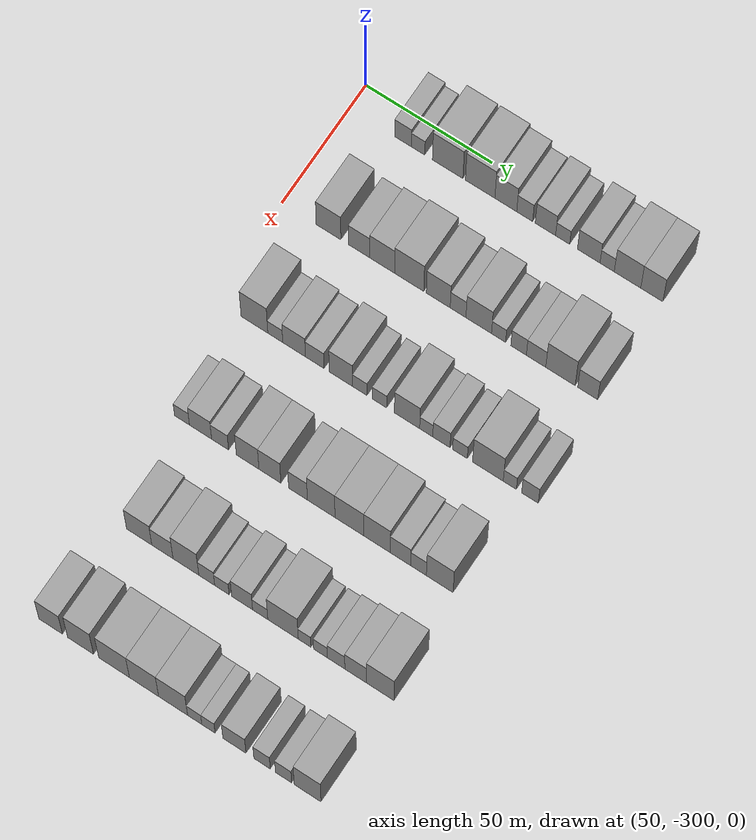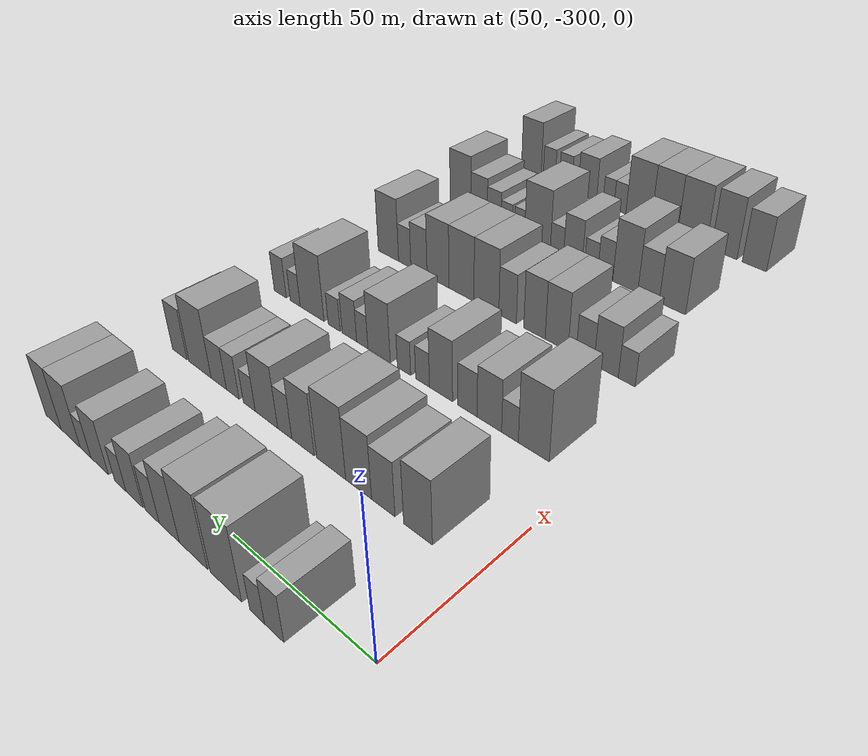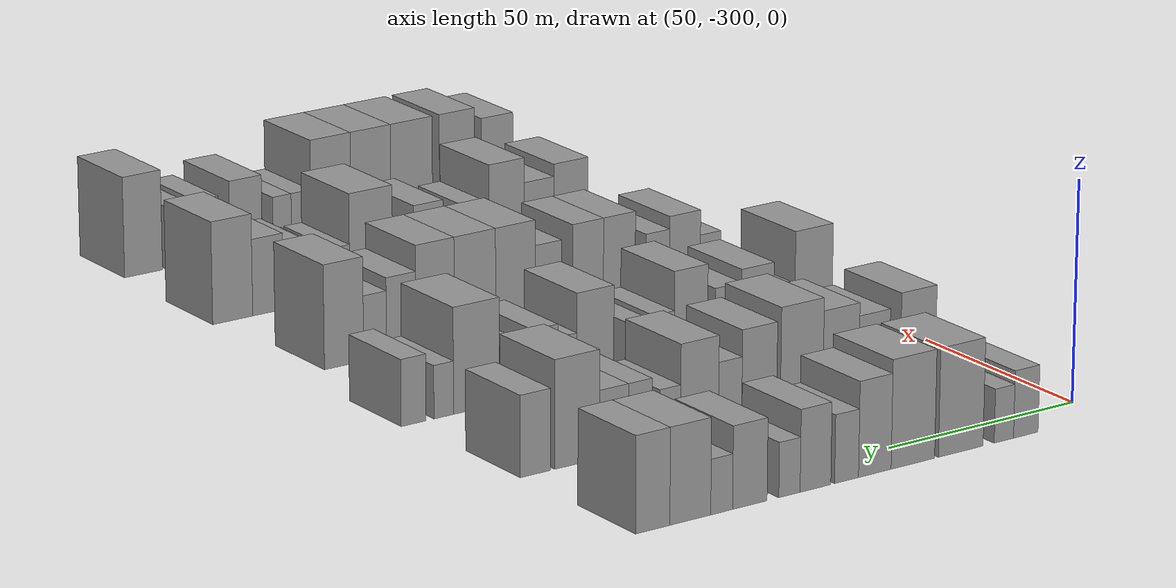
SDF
<sdf version="1.6">
 <world name="default">
  <model name="building_34">
   <static>1</static>
   <pose>50.0000 -278.7101 0 0.000000 0.000000 0.000000</pose>
   <link name="link">
    <pose>0 0 7.50 0 0 0</pose>
    <collision name="collision"><geometry><box><size>20.0000 6.6780 15.0000</size></box></geometry></collision>
    <visual name="visual">
     <cast_shadows>0</cast_shadows>
     <geometry><box><size>20.0000 6.6780 15.0000</size></box></geometry>
     <material>
      <script>
       <uri>model://grey_wall/materials/scripts</uri>
       <uri>model://grey_wall/materials/textures</uri>
       <name>vrc/grey_wall</name>
      </script>
     </material>
    </visual>
   </link>
  </model>
  <model name="building_35">
   <static>1</static>
   <pose>50.0000 -272.7477 0 0.000000 0.000000 0.000000</pose>
   <link name="link">
    <pose>0 0 6.00 0 0 0</pose>
    <collision name="collision"><geometry><box><size>20.0000 5.2467 12.0000</size></box></geometry></collision>
    <visual name="visual">
     <cast_shadows>0</cast_shadows>
     <geometry><box><size>20.0000 5.2467 12.0000</size></box></geometry>
     <material>
      <script>
       <uri>model://grey_wall/materials/scripts</uri>
       <uri>model://grey_wall/materials/textures</uri>
       <name>vrc/grey_wall</name>
      </script>
     </material>
    </visual>
   </link>
  </model>
  <model name="building_36">
   <static>1</static>
   <pose>50.0000 -261.1301 0 0.000000 0.000000 0.000000</pose>
   <link name="link">
    <pose>0 0 12.00 0 0 0</pose>
    <collision name="collision"><geometry><box><size>20.0000 11.9886 24.0000</size></box></geometry></collision>
    <visual name="visual">
     <cast_shadows>0</cast_shadows>
     <geometry><box><size>20.0000 11.9886 24.0000</size></box></geometry>
     <material>
      <script>
       <uri>model://grey_wall/materials/scripts</uri>
       <uri>model://grey_wall/materials/textures</uri>
       <name>vrc/grey_wall</name>
      </script>
     </material>
    </visual>
   </link>
  </model>
  <model name="building_37">
   <static>1</static>
   <pose>50.0000 -248.3697 0 0.000000 0.000000 0.000000</pose>
   <link name="link">
    <pose>0 0 12.00 0 0 0</pose>
    <collision name="collision"><geometry><box><size>20.0000 11.5321 24.0000</size></box></geometry></collision>
    <visual name="visual">
     <cast_shadows>0</cast_shadows>
     <geometry><box><size>20.0000 11.5321 24.0000</size></box></geometry>
     <material>
      <script>
       <uri>model://grey_wall/materials/scripts</uri>
       <uri>model://grey_wall/materials/textures</uri>
       <name>vrc/grey_wall</name>
      </script>
     </material>
    </visual>
   </link>
  </model>
  <model name="building_38">
   <static>1</static>
   <pose>50.0000 -238.3256 0 0.000000 0.000000 0.000000</pose>
   <link name="link">
    <pose>0 0 10.50 0 0 0</pose>
    <collision name="collision"><geometry><box><size>20.0000 8.5561 21.0000</size></box></geometry></collision>
    <visual name="visual">
     <cast_shadows>0</cast_shadows>
     <geometry><box><size>20.0000 8.5561 21.0000</size></box></geometry>
     <material>
      <script>
       <uri>model://grey_wall/materials/scripts</uri>
       <uri>model://grey_wall/materials/textures</uri>
       <name>vrc/grey_wall</name>
      </script>
     </material>
    </visual>
   </link>
  </model>
  <model name="building_39">
   <static>1</static>
   <pose>50.0000 -230.9383 0 0.000000 0.000000 0.000000</pose>
   <link name="link">
    <pose>0 0 7.50 0 0 0</pose>
    <collision name="collision"><geometry><box><size>20.0000 6.2185 15.0000</size></box></geometry></collision>
    <visual name="visual">
     <cast_shadows>0</cast_shadows>
     <geometry><box><size>20.0000 6.2185 15.0000</size></box></geometry>
     <material>
      <script>
       <uri>model://grey_wall/materials/scripts</uri>
       <uri>model://grey_wall/materials/textures</uri>
       <name>vrc/grey_wall</name>
      </script>
     </material>
    </visual>
   </link>
  </model>
  <model name="building_40">
   <static>1</static>
   <pose>50.0000 -222.8630 0 0.000000 0.000000 0.000000</pose>
   <link name="link">
    <pose>0 0 9.00 0 0 0</pose>
    <collision name="collision"><geometry><box><size>20.0000 7.9320 18.0000</size></box></geometry></collision>
    <visual name="visual">
     <cast_shadows>0</cast_shadows>
     <geometry><box><size>20.0000 7.9320 18.0000</size></box></geometry>
     <material>
      <script>
       <uri>model://grey_wall/materials/scripts</uri>
       <uri>model://grey_wall/materials/textures</uri>
       <name>vrc/grey_wall</name>
      </script>
     </material>
    </visual>
   </link>
  </model>
  <model name="building_41">
   <static>1</static>
   <pose>50.0000 -216.1563 0 0.000000 0.000000 0.000000</pose>
   <link name="link">
    <pose>0 0 6.00 0 0 0</pose>
    <collision name="collision"><geometry><box><size>20.0000 5.4815 12.0000</size></box></geometry></collision>
    <visual name="visual">
     <cast_shadows>0</cast_shadows>
     <geometry><box><size>20.0000 5.4815 12.0000</size></box></geometry>
     <material>
      <script>
       <uri>model://grey_wall/materials/scripts</uri>
       <uri>model://grey_wall/materials/textures</uri>
       <name>vrc/grey_wall</name>
      </script>
     </material>
    </visual>
   </link>
  </model>
  <model name="building_42">
   <static>1</static>
   <pose>50.0000 -206.0236 0 0.000000 0.000000 0.000000</pose>
   <link name="link">
    <pose>0 0 9.00 0 0 0</pose>
    <collision name="collision"><geometry><box><size>20.0000 8.7838 18.0000</size></box></geometry></collision>
    <visual name="visual">
     <cast_shadows>0</cast_shadows>
     <geometry><box><size>20.0000 8.7838 18.0000</size></box></geometry>
     <material>
      <script>
       <uri>model://grey_wall/materials/scripts</uri>
       <uri>model://grey_wall/materials/textures</uri>
       <name>vrc/grey_wall</name>
      </script>
     </material>
    </visual>
   </link>
  </model>
  <model name="building_43">
   <static>1</static>
   <pose>50.0000 -198.8813 0 0.000000 0.000000 0.000000</pose>
   <link name="link">
    <pose>0 0 6.00 0 0 0</pose>
    <collision name="collision"><geometry><box><size>20.0000 5.5008 12.0000</size></box></geometry></collision>
    <visual name="visual">
     <cast_shadows>0</cast_shadows>
     <geometry><box><size>20.0000 5.5008 12.0000</size></box></geometry>
     <material>
      <script>
       <uri>model://grey_wall/materials/scripts</uri>
       <uri>model://grey_wall/materials/textures</uri>
       <name>vrc/grey_wall</name>
      </script>
     </material>
    </visual>
   </link>
  </model>
  <model name="building_44">
   <static>1</static>
   <pose>50.0000 -190.9988 0 0.000000 0.000000 0.000000</pose>
   <link name="link">
    <pose>0 0 10.50 0 0 0</pose>
    <collision name="collision"><geometry><box><size>20.0000 10.2642 21.0000</size></box></geometry></collision>
    <visual name="visual">
     <cast_shadows>0</cast_shadows>
     <geometry><box><size>20.0000 10.2642 21.0000</size></box></geometry>
     <material>
      <script>
       <uri>model://grey_wall/materials/scripts</uri>
       <uri>model://grey_wall/materials/textures</uri>
       <name>vrc/grey_wall</name>
      </script>
     </material>
    </visual>
   </link>
  </model>
  <model name="building_45">
   <static>1</static>
   <pose>50.0000 -181.6023 0 0.000000 0.000000 0.000000</pose>
   <link name="link">
    <pose>0 0 10.50 0 0 0</pose>
    <collision name="collision"><geometry><box><size>20.0000 8.5288 21.0000</size></box></geometry></collision>
    <visual name="visual">
     <cast_shadows>0</cast_shadows>
     <geometry><box><size>20.0000 8.5288 21.0000</size></box></geometry>
     <material>
      <script>
       <uri>model://grey_wall/materials/scripts</uri>
       <uri>model://grey_wall/materials/textures</uri>
       <name>vrc/grey_wall</name>
      </script>
     </material>
    </visual>
   </link>
  </model>
  <model name="building_181">
   <static>1</static>
   <pose>90.0000 -281.5855 0 0.000000 0.000000 0.000000</pose>
   <link name="link">
    <pose>0 0 10.50 0 0 0</pose>
    <collision name="collision"><geometry><box><size>20.0000 9.7224 21.0000</size></box></geometry></collision>
    <visual name="visual">
     <cast_shadows>0</cast_shadows>
     <geometry><box><size>20.0000 9.7224 21.0000</size></box></geometry>
     <material>
      <script>
       <uri>model://grey_wall/materials/scripts</uri>
       <uri>model://grey_wall/materials/textures</uri>
       <name>vrc/grey_wall</name>
      </script>
     </material>
    </visual>
   </link>
  </model>
  <model name="building_182">
   <static>1</static>
   <pose>90.0000 -269.5433 0 0.000000 0.000000 0.000000</pose>
   <link name="link">
    <pose>0 0 9.00 0 0 0</pose>
    <collision name="collision"><geometry><box><size>20.0000 8.3619 18.0000</size></box></geometry></collision>
    <visual name="visual">
     <cast_shadows>0</cast_shadows>
     <geometry><box><size>20.0000 8.3619 18.0000</size></box></geometry>
     <material>
      <script>
       <uri>model://grey_wall/materials/scripts</uri>
       <uri>model://grey_wall/materials/textures</uri>
       <name>vrc/grey_wall</name>
      </script>
     </material>
    </visual>
   </link>
  </model>
  <model name="building_183">
   <static>1</static>
   <pose>90.0000 -260.5118 0 0.000000 0.000000 0.000000</pose>
   <link name="link">
    <pose>0 0 10.50 0 0 0</pose>
    <collision name="collision"><geometry><box><size>20.0000 9.7011 21.0000</size></box></geometry></collision>
    <visual name="visual">
     <cast_shadows>0</cast_shadows>
     <geometry><box><size>20.0000 9.7011 21.0000</size></box></geometry>
     <material>
      <script>
       <uri>model://grey_wall/materials/scripts</uri>
       <uri>model://grey_wall/materials/textures</uri>
       <name>vrc/grey_wall</name>
      </script>
     </material>
    </visual>
   </link>
  </model>
  <model name="building_184">
   <static>1</static>
   <pose>90.0000 -249.9628 0 0.000000 0.000000 0.000000</pose>
   <link name="link">
    <pose>0 0 12.00 0 0 0</pose>
    <collision name="collision"><geometry><box><size>20.0000 11.3970 24.0000</size></box></geometry></collision>
    <visual name="visual">
     <cast_shadows>0</cast_shadows>
     <geometry><box><size>20.0000 11.3970 24.0000</size></box></geometry>
     <material>
      <script>
       <uri>model://grey_wall/materials/scripts</uri>
       <uri>model://grey_wall/materials/textures</uri>
       <name>vrc/grey_wall</name>
      </script>
     </material>
    </visual>
   </link>
  </model>
  <model name="building_185">
   <static>1</static>
   <pose>90.0000 -238.6274 0 0.000000 0.000000 0.000000</pose>
   <link name="link">
    <pose>0 0 10.50 0 0 0</pose>
    <collision name="collision"><geometry><box><size>20.0000 9.2737 21.0000</size></box></geometry></collision>
    <visual name="visual">
     <cast_shadows>0</cast_shadows>
     <geometry><box><size>20.0000 9.2737 21.0000</size></box></geometry>
     <material>
      <script>
       <uri>model://grey_wall/materials/scripts</uri>
       <uri>model://grey_wall/materials/textures</uri>
       <name>vrc/grey_wall</name>
      </script>
     </material>
    </visual>
   </link>
  </model>
  <model name="building_186">
   <static>1</static>
   <pose>90.0000 -230.9327 0 0.000000 0.000000 0.000000</pose>
   <link name="link">
    <pose>0 0 7.50 0 0 0</pose>
    <collision name="collision"><geometry><box><size>20.0000 6.1157 15.0000</size></box></geometry></collision>
    <visual name="visual">
     <cast_shadows>0</cast_shadows>
     <geometry><box><size>20.0000 6.1157 15.0000</size></box></geometry>
     <material>
      <script>
       <uri>model://grey_wall/materials/scripts</uri>
       <uri>model://grey_wall/materials/textures</uri>
       <name>vrc/grey_wall</name>
      </script>
     </material>
    </visual>
   </link>
  </model>
  <model name="building_187">
   <static>1</static>
   <pose>90.0000 -222.9014 0 0.000000 0.000000 0.000000</pose>
   <link name="link">
    <pose>0 0 10.50 0 0 0</pose>
    <collision name="collision"><geometry><box><size>20.0000 9.9469 21.0000</size></box></geometry></collision>
    <visual name="visual">
     <cast_shadows>0</cast_shadows>
     <geometry><box><size>20.0000 9.9469 21.0000</size></box></geometry>
     <material>
      <script>
       <uri>model://grey_wall/materials/scripts</uri>
       <uri>model://grey_wall/materials/textures</uri>
       <name>vrc/grey_wall</name>
      </script>
     </material>
    </visual>
   </link>
  </model>
  <model name="building_188">
   <static>1</static>
   <pose>90.0000 -215.1962 0 0.000000 0.000000 0.000000</pose>
   <link name="link">
    <pose>0 0 6.00 0 0 0</pose>
    <collision name="collision"><geometry><box><size>20.0000 5.4635 12.0000</size></box></geometry></collision>
    <visual name="visual">
     <cast_shadows>0</cast_shadows>
     <geometry><box><size>20.0000 5.4635 12.0000</size></box></geometry>
     <material>
      <script>
       <uri>model://grey_wall/materials/scripts</uri>
       <uri>model://grey_wall/materials/textures</uri>
       <name>vrc/grey_wall</name>
      </script>
     </material>
    </visual>
   </link>
  </model>
  <model name="building_189">
   <static>1</static>
   <pose>90.0000 -207.4547 0 0.000000 0.000000 0.000000</pose>
   <link name="link">
    <pose>0 0 7.50 0 0 0</pose>
    <collision name="collision"><geometry><box><size>20.0000 6.0195 15.0000</size></box></geometry></collision>
    <visual name="visual">
     <cast_shadows>0</cast_shadows>
     <geometry><box><size>20.0000 6.0195 15.0000</size></box></geometry>
     <material>
      <script>
       <uri>model://grey_wall/materials/scripts</uri>
       <uri>model://grey_wall/materials/textures</uri>
       <name>vrc/grey_wall</name>
      </script>
     </material>
    </visual>
   </link>
  </model>
  <model name="building_190">
   <static>1</static>
   <pose>90.0000 -200.7023 0 0.000000 0.000000 0.000000</pose>
   <link name="link">
    <pose>0 0 7.50 0 0 0</pose>
    <collision name="collision"><geometry><box><size>20.0000 7.4853 15.0000</size></box></geometry></collision>
    <visual name="visual">
     <cast_shadows>0</cast_shadows>
     <geometry><box><size>20.0000 7.4853 15.0000</size></box></geometry>
     <material>
      <script>
       <uri>model://grey_wall/materials/scripts</uri>
       <uri>model://grey_wall/materials/textures</uri>
       <name>vrc/grey_wall</name>
      </script>
     </material>
    </visual>
   </link>
  </model>
  <model name="building_191">
   <static>1</static>
   <pose>90.0000 -191.3024 0 0.000000 0.000000 0.000000</pose>
   <link name="link">
    <pose>0 0 12.00 0 0 0</pose>
    <collision name="collision"><geometry><box><size>20.0000 11.3145 24.0000</size></box></geometry></collision>
    <visual name="visual">
     <cast_shadows>0</cast_shadows>
     <geometry><box><size>20.0000 11.3145 24.0000</size></box></geometry>
     <material>
      <script>
       <uri>model://grey_wall/materials/scripts</uri>
       <uri>model://grey_wall/materials/textures</uri>
       <name>vrc/grey_wall</name>
      </script>
     </material>
    </visual>
   </link>
  </model>
  <model name="building_192">
   <static>1</static>
   <pose>90.0000 -180.8074 0 0.000000 0.000000 0.000000</pose>
   <link name="link">
    <pose>0 0 9.00 0 0 0</pose>
    <collision name="collision"><geometry><box><size>20.0000 7.6755 18.0000</size></box></geometry></collision>
    <visual name="visual">
     <cast_shadows>0</cast_shadows>
     <geometry><box><size>20.0000 7.6755 18.0000</size></box></geometry>
     <material>
      <script>
       <uri>model://grey_wall/materials/scripts</uri>
       <uri>model://grey_wall/materials/textures</uri>
       <name>vrc/grey_wall</name>
      </script>
     </material>
    </visual>
   </link>
  </model>
  <model name="building_309">
   <static>1</static>
   <pose>130.0000 -283.8906 0 0.000000 0.000000 0.000000</pose>
   <link name="link">
    <pose>0 0 12.00 0 0 0</pose>
    <collision name="collision"><geometry><box><size>20.0000 10.4804 24.0000</size></box></geometry></collision>
    <visual name="visual">
     <cast_shadows>0</cast_shadows>
     <geometry><box><size>20.0000 10.4804 24.0000</size></box></geometry>
     <material>
      <script>
       <uri>model://grey_wall/materials/scripts</uri>
       <uri>model://grey_wall/materials/textures</uri>
       <name>vrc/grey_wall</name>
      </script>
     </material>
    </visual>
   </link>
  </model>
  <model name="building_310">
   <static>1</static>
   <pose>130.0000 -275.7303 0 0.000000 0.000000 0.000000</pose>
   <link name="link">
    <pose>0 0 6.00 0 0 0</pose>
    <collision name="collision"><geometry><box><size>20.0000 5.8401 12.0000</size></box></geometry></collision>
    <visual name="visual">
     <cast_shadows>0</cast_shadows>
     <geometry><box><size>20.0000 5.8401 12.0000</size></box></geometry>
     <material>
      <script>
       <uri>model://grey_wall/materials/scripts</uri>
       <uri>model://grey_wall/materials/textures</uri>
       <name>vrc/grey_wall</name>
      </script>
     </material>
    </visual>
   </link>
  </model>
  <model name="building_311">
   <static>1</static>
   <pose>130.0000 -268.3710 0 0.000000 0.000000 0.000000</pose>
   <link name="link">
    <pose>0 0 9.00 0 0 0</pose>
    <collision name="collision"><geometry><box><size>20.0000 8.8785 18.0000</size></box></geometry></collision>
    <visual name="visual">
     <cast_shadows>0</cast_shadows>
     <geometry><box><size>20.0000 8.8785 18.0000</size></box></geometry>
     <material>
      <script>
       <uri>model://grey_wall/materials/scripts</uri>
       <uri>model://grey_wall/materials/textures</uri>
       <name>vrc/grey_wall</name>
      </script>
     </material>
    </visual>
   </link>
  </model>
  <model name="building_312">
   <static>1</static>
   <pose>130.0000 -260.2960 0 0.000000 0.000000 0.000000</pose>
   <link name="link">
    <pose>0 0 7.50 0 0 0</pose>
    <collision name="collision"><geometry><box><size>20.0000 7.2715 15.0000</size></box></geometry></collision>
    <visual name="visual">
     <cast_shadows>0</cast_shadows>
     <geometry><box><size>20.0000 7.2715 15.0000</size></box></geometry>
     <material>
      <script>
       <uri>model://grey_wall/materials/scripts</uri>
       <uri>model://grey_wall/materials/textures</uri>
       <name>vrc/grey_wall</name>
      </script>
     </material>
    </visual>
   </link>
  </model>
  <model name="building_313">
   <static>1</static>
   <pose>130.0000 -250.1205 0 0.000000 0.000000 0.000000</pose>
   <link name="link">
    <pose>0 0 10.50 0 0 0</pose>
    <collision name="collision"><geometry><box><size>20.0000 9.0794 21.0000</size></box></geometry></collision>
    <visual name="visual">
     <cast_shadows>0</cast_shadows>
     <geometry><box><size>20.0000 9.0794 21.0000</size></box></geometry>
     <material>
      <script>
       <uri>model://grey_wall/materials/scripts</uri>
       <uri>model://grey_wall/materials/textures</uri>
       <name>vrc/grey_wall</name>
      </script>
     </material>
    </visual>
   </link>
  </model>
  <model name="building_314">
   <static>1</static>
   <pose>130.0000 -242.7657 0 0.000000 0.000000 0.000000</pose>
   <link name="link">
    <pose>0 0 6.00 0 0 0</pose>
    <collision name="collision"><geometry><box><size>20.0000 5.6302 12.0000</size></box></geometry></collision>
    <visual name="visual">
     <cast_shadows>0</cast_shadows>
     <geometry><box><size>20.0000 5.6302 12.0000</size></box></geometry>
     <material>
      <script>
       <uri>model://grey_wall/materials/scripts</uri>
       <uri>model://grey_wall/materials/textures</uri>
       <name>vrc/grey_wall</name>
      </script>
     </material>
    </visual>
   </link>
  </model>
  <model name="building_315">
   <static>1</static>
   <pose>130.0000 -235.1568 0 0.000000 0.000000 0.000000</pose>
   <link name="link">
    <pose>0 0 6.00 0 0 0</pose>
    <collision name="collision"><geometry><box><size>20.0000 5.5876 12.0000</size></box></geometry></collision>
    <visual name="visual">
     <cast_shadows>0</cast_shadows>
     <geometry><box><size>20.0000 5.5876 12.0000</size></box></geometry>
     <material>
      <script>
       <uri>model://grey_wall/materials/scripts</uri>
       <uri>model://grey_wall/materials/textures</uri>
       <name>vrc/grey_wall</name>
      </script>
     </material>
    </visual>
   </link>
  </model>
  <model name="building_316">
   <static>1</static>
   <pose>130.0000 -224.4772 0 0.000000 0.000000 0.000000</pose>
   <link name="link">
    <pose>0 0 10.50 0 0 0</pose>
    <collision name="collision"><geometry><box><size>20.0000 9.7715 21.0000</size></box></geometry></collision>
    <visual name="visual">
     <cast_shadows>0</cast_shadows>
     <geometry><box><size>20.0000 9.7715 21.0000</size></box></geometry>
     <material>
      <script>
       <uri>model://grey_wall/materials/scripts</uri>
       <uri>model://grey_wall/materials/textures</uri>
       <name>vrc/grey_wall</name>
      </script>
     </material>
    </visual>
   </link>
  </model>
  <model name="building_317">
   <static>1</static>
   <pose>130.0000 -217.0704 0 0.000000 0.000000 0.000000</pose>
   <link name="link">
    <pose>0 0 6.00 0 0 0</pose>
    <collision name="collision"><geometry><box><size>20.0000 5.0422 12.0000</size></box></geometry></collision>
    <visual name="visual">
     <cast_shadows>0</cast_shadows>
     <geometry><box><size>20.0000 5.0422 12.0000</size></box></geometry>
     <material>
      <script>
       <uri>model://grey_wall/materials/scripts</uri>
       <uri>model://grey_wall/materials/textures</uri>
       <name>vrc/grey_wall</name>
      </script>
     </material>
    </visual>
   </link>
  </model>
  <model name="building_318">
   <static>1</static>
   <pose>130.0000 -211.2280 0 0.000000 0.000000 0.000000</pose>
   <link name="link">
    <pose>0 0 7.50 0 0 0</pose>
    <collision name="collision"><geometry><box><size>20.0000 6.6426 15.0000</size></box></geometry></collision>
    <visual name="visual">
     <cast_shadows>0</cast_shadows>
     <geometry><box><size>20.0000 6.6426 15.0000</size></box></geometry>
     <material>
      <script>
       <uri>model://grey_wall/materials/scripts</uri>
       <uri>model://grey_wall/materials/textures</uri>
       <name>vrc/grey_wall</name>
      </script>
     </material>
    </visual>
   </link>
  </model>
  <model name="building_319">
   <static>1</static>
   <pose>130.0000 -204.0711 0 0.000000 0.000000 0.000000</pose>
   <link name="link">
    <pose>0 0 6.00 0 0 0</pose>
    <collision name="collision"><geometry><box><size>20.0000 5.6711 12.0000</size></box></geometry></collision>
    <visual name="visual">
     <cast_shadows>0</cast_shadows>
     <geometry><box><size>20.0000 5.6711 12.0000</size></box></geometry>
     <material>
      <script>
       <uri>model://grey_wall/materials/scripts</uri>
       <uri>model://grey_wall/materials/textures</uri>
       <name>vrc/grey_wall</name>
      </script>
     </material>
    </visual>
   </link>
  </model>
  <model name="building_320">
   <static>1</static>
   <pose>130.0000 -193.3416 0 0.000000 0.000000 0.000000</pose>
   <link name="link">
    <pose>0 0 12.00 0 0 0</pose>
    <collision name="collision"><geometry><box><size>20.0000 11.7881 24.0000</size></box></geometry></collision>
    <visual name="visual">
     <cast_shadows>0</cast_shadows>
     <geometry><box><size>20.0000 11.7881 24.0000</size></box></geometry>
     <material>
      <script>
       <uri>model://grey_wall/materials/scripts</uri>
       <uri>model://grey_wall/materials/textures</uri>
       <name>vrc/grey_wall</name>
      </script>
     </material>
    </visual>
   </link>
  </model>
  <model name="building_321">
   <static>1</static>
   <pose>130.0000 -184.9267 0 0.000000 0.000000 0.000000</pose>
   <link name="link">
    <pose>0 0 6.00 0 0 0</pose>
    <collision name="collision"><geometry><box><size>20.0000 5.0417 12.0000</size></box></geometry></collision>
    <visual name="visual">
     <cast_shadows>0</cast_shadows>
     <geometry><box><size>20.0000 5.0417 12.0000</size></box></geometry>
     <material>
      <script>
       <uri>model://grey_wall/materials/scripts</uri>
       <uri>model://grey_wall/materials/textures</uri>
       <name>vrc/grey_wall</name>
      </script>
     </material>
    </visual>
   </link>
  </model>
  <model name="building_322">
   <static>1</static>
   <pose>130.0000 -177.2299 0 0.000000 0.000000 0.000000</pose>
   <link name="link">
    <pose>0 0 7.50 0 0 0</pose>
    <collision name="collision"><geometry><box><size>20.0000 6.3518 15.0000</size></box></geometry></collision>
    <visual name="visual">
     <cast_shadows>0</cast_shadows>
     <geometry><box><size>20.0000 6.3518 15.0000</size></box></geometry>
     <material>
      <script>
       <uri>model://grey_wall/materials/scripts</uri>
       <uri>model://grey_wall/materials/textures</uri>
       <name>vrc/grey_wall</name>
      </script>
     </material>
    </visual>
   </link>
  </model>
  <model name="building_450">
   <static>1</static>
   <pose>170.0000 -285.1520 0 0.000000 0.000000 0.000000</pose>
   <link name="link">
    <pose>0 0 6.00 0 0 0</pose>
    <collision name="collision"><geometry><box><size>20.0000 5.8097 12.0000</size></box></geometry></collision>
    <visual name="visual">
     <cast_shadows>0</cast_shadows>
     <geometry><box><size>20.0000 5.8097 12.0000</size></box></geometry>
     <material>
      <script>
       <uri>model://grey_wall/materials/scripts</uri>
       <uri>model://grey_wall/materials/textures</uri>
       <name>vrc/grey_wall</name>
      </script>
     </material>
    </visual>
   </link>
  </model>
  <model name="building_451">
   <static>1</static>
   <pose>170.0000 -277.9276 0 0.000000 0.000000 0.000000</pose>
   <link name="link">
    <pose>0 0 9.00 0 0 0</pose>
    <collision name="collision"><geometry><box><size>20.0000 8.6393 18.0000</size></box></geometry></collision>
    <visual name="visual">
     <cast_shadows>0</cast_shadows>
     <geometry><box><size>20.0000 8.6393 18.0000</size></box></geometry>
     <material>
      <script>
       <uri>model://grey_wall/materials/scripts</uri>
       <uri>model://grey_wall/materials/textures</uri>
       <name>vrc/grey_wall</name>
      </script>
     </material>
    </visual>
   </link>
  </model>
  <model name="building_452">
   <static>1</static>
   <pose>170.0000 -270.3039 0 0.000000 0.000000 0.000000</pose>
   <link name="link">
    <pose>0 0 7.50 0 0 0</pose>
    <collision name="collision"><geometry><box><size>20.0000 6.6082 15.0000</size></box></geometry></collision>
    <visual name="visual">
     <cast_shadows>0</cast_shadows>
     <geometry><box><size>20.0000 6.6082 15.0000</size></box></geometry>
     <material>
      <script>
       <uri>model://grey_wall/materials/scripts</uri>
       <uri>model://grey_wall/materials/textures</uri>
       <name>vrc/grey_wall</name>
      </script>
     </material>
    </visual>
   </link>
  </model>
  <model name="building_453">
   <static>1</static>
   <pose>170.0000 -259.5985 0 0.000000 0.000000 0.000000</pose>
   <link name="link">
    <pose>0 0 10.50 0 0 0</pose>
    <collision name="collision"><geometry><box><size>20.0000 8.8025 21.0000</size></box></geometry></collision>
    <visual name="visual">
     <cast_shadows>0</cast_shadows>
     <geometry><box><size>20.0000 8.8025 21.0000</size></box></geometry>
     <material>
      <script>
       <uri>model://grey_wall/materials/scripts</uri>
       <uri>model://grey_wall/materials/textures</uri>
       <name>vrc/grey_wall</name>
      </script>
     </material>
    </visual>
   </link>
  </model>
  <model name="building_454">
   <static>1</static>
   <pose>170.0000 -250.9530 0 0.000000 0.000000 0.000000</pose>
   <link name="link">
    <pose>0 0 10.50 0 0 0</pose>
    <collision name="collision"><geometry><box><size>20.0000 8.4886 21.0000</size></box></geometry></collision>
    <visual name="visual">
     <cast_shadows>0</cast_shadows>
     <geometry><box><size>20.0000 8.4886 21.0000</size></box></geometry>
     <material>
      <script>
       <uri>model://grey_wall/materials/scripts</uri>
       <uri>model://grey_wall/materials/textures</uri>
       <name>vrc/grey_wall</name>
      </script>
     </material>
    </visual>
   </link>
  </model>
  <model name="building_455">
   <static>1</static>
   <pose>170.0000 -240.0830 0 0.000000 0.000000 0.000000</pose>
   <link name="link">
    <pose>0 0 9.00 0 0 0</pose>
    <collision name="collision"><geometry><box><size>20.0000 7.2514 18.0000</size></box></geometry></collision>
    <visual name="visual">
     <cast_shadows>0</cast_shadows>
     <geometry><box><size>20.0000 7.2514 18.0000</size></box></geometry>
     <material>
      <script>
       <uri>model://grey_wall/materials/scripts</uri>
       <uri>model://grey_wall/materials/textures</uri>
       <name>vrc/grey_wall</name>
      </script>
     </material>
    </visual>
   </link>
  </model>
  <model name="building_456">
   <static>1</static>
   <pose>170.0000 -231.1326 0 0.000000 0.000000 0.000000</pose>
   <link name="link">
    <pose>0 0 12.00 0 0 0</pose>
    <collision name="collision"><geometry><box><size>20.0000 10.6492 24.0000</size></box></geometry></collision>
    <visual name="visual">
     <cast_shadows>0</cast_shadows>
     <geometry><box><size>20.0000 10.6492 24.0000</size></box></geometry>
     <material>
      <script>
       <uri>model://grey_wall/materials/scripts</uri>
       <uri>model://grey_wall/materials/textures</uri>
       <name>vrc/grey_wall</name>
      </script>
     </material>
    </visual>
   </link>
  </model>
  <model name="building_457">
   <static>1</static>
   <pose>170.0000 -220.2752 0 0.000000 0.000000 0.000000</pose>
   <link name="link">
    <pose>0 0 12.00 0 0 0</pose>
    <collision name="collision"><geometry><box><size>20.0000 11.0657 24.0000</size></box></geometry></collision>
    <visual name="visual">
     <cast_shadows>0</cast_shadows>
     <geometry><box><size>20.0000 11.0657 24.0000</size></box></geometry>
     <material>
      <script>
       <uri>model://grey_wall/materials/scripts</uri>
       <uri>model://grey_wall/materials/textures</uri>
       <name>vrc/grey_wall</name>
      </script>
     </material>
    </visual>
   </link>
  </model>
  <model name="building_458">
   <static>1</static>
   <pose>170.0000 -209.6518 0 0.000000 0.000000 0.000000</pose>
   <link name="link">
    <pose>0 0 12.00 0 0 0</pose>
    <collision name="collision"><geometry><box><size>20.0000 10.1810 24.0000</size></box></geometry></collision>
    <visual name="visual">
     <cast_shadows>0</cast_shadows>
     <geometry><box><size>20.0000 10.1810 24.0000</size></box></geometry>
     <material>
      <script>
       <uri>model://grey_wall/materials/scripts</uri>
       <uri>model://grey_wall/materials/textures</uri>
       <name>vrc/grey_wall</name>
      </script>
     </material>
    </visual>
   </link>
  </model>
  <model name="building_459">
   <static>1</static>
   <pose>170.0000 -200.6749 0 0.000000 0.000000 0.000000</pose>
   <link name="link">
    <pose>0 0 9.00 0 0 0</pose>
    <collision name="collision"><geometry><box><size>20.0000 7.7728 18.0000</size></box></geometry></collision>
    <visual name="visual">
     <cast_shadows>0</cast_shadows>
     <geometry><box><size>20.0000 7.7728 18.0000</size></box></geometry>
     <material>
      <script>
       <uri>model://grey_wall/materials/scripts</uri>
       <uri>model://grey_wall/materials/textures</uri>
       <name>vrc/grey_wall</name>
      </script>
     </material>
    </visual>
   </link>
  </model>
  <model name="building_460">
   <static>1</static>
   <pose>170.0000 -193.7880 0 0.000000 0.000000 0.000000</pose>
   <link name="link">
    <pose>0 0 7.50 0 0 0</pose>
    <collision name="collision"><geometry><box><size>20.0000 6.0010 15.0000</size></box></geometry></collision>
    <visual name="visual">
     <cast_shadows>0</cast_shadows>
     <geometry><box><size>20.0000 6.0010 15.0000</size></box></geometry>
     <material>
      <script>
       <uri>model://grey_wall/materials/scripts</uri>
       <uri>model://grey_wall/materials/textures</uri>
       <name>vrc/grey_wall</name>
      </script>
     </material>
    </visual>
   </link>
  </model>
  <model name="building_461">
   <static>1</static>
   <pose>170.0000 -185.6848 0 0.000000 0.000000 0.000000</pose>
   <link name="link">
    <pose>0 0 12.00 0 0 0</pose>
    <collision name="collision"><geometry><box><size>20.0000 10.2054 24.0000</size></box></geometry></collision>
    <visual name="visual">
     <cast_shadows>0</cast_shadows>
     <geometry><box><size>20.0000 10.2054 24.0000</size></box></geometry>
     <material>
      <script>
       <uri>model://grey_wall/materials/scripts</uri>
       <uri>model://grey_wall/materials/textures</uri>
       <name>vrc/grey_wall</name>
      </script>
     </material>
    </visual>
   </link>
  </model>
  <model name="building_580">
   <static>1</static>
   <pose>210.0000 -274.5081 0 0.000000 0.000000 0.000000</pose>
   <link name="link">
    <pose>0 0 10.50 0 0 0</pose>
    <collision name="collision"><geometry><box><size>20.0000 9.8038 21.0000</size></box></geometry></collision>
    <visual name="visual">
     <cast_shadows>0</cast_shadows>
     <geometry><box><size>20.0000 9.8038 21.0000</size></box></geometry>
     <material>
      <script>
       <uri>model://grey_wall/materials/scripts</uri>
       <uri>model://grey_wall/materials/textures</uri>
       <name>vrc/grey_wall</name>
      </script>
     </material>
    </visual>
   </link>
  </model>
  <model name="building_581">
   <static>1</static>
   <pose>210.0000 -265.4993 0 0.000000 0.000000 0.000000</pose>
   <link name="link">
    <pose>0 0 9.00 0 0 0</pose>
    <collision name="collision"><geometry><box><size>20.0000 8.2138 18.0000</size></box></geometry></collision>
    <visual name="visual">
     <cast_shadows>0</cast_shadows>
     <geometry><box><size>20.0000 8.2138 18.0000</size></box></geometry>
     <material>
      <script>
       <uri>model://grey_wall/materials/scripts</uri>
       <uri>model://grey_wall/materials/textures</uri>
       <name>vrc/grey_wall</name>
      </script>
     </material>
    </visual>
   </link>
  </model>
  <model name="building_582">
   <static>1</static>
   <pose>210.0000 -256.4042 0 0.000000 0.000000 0.000000</pose>
   <link name="link">
    <pose>0 0 12.00 0 0 0</pose>
    <collision name="collision"><geometry><box><size>20.0000 9.9763 24.0000</size></box></geometry></collision>
    <visual name="visual">
     <cast_shadows>0</cast_shadows>
     <geometry><box><size>20.0000 9.9763 24.0000</size></box></geometry>
     <material>
      <script>
       <uri>model://grey_wall/materials/scripts</uri>
       <uri>model://grey_wall/materials/textures</uri>
       <name>vrc/grey_wall</name>
      </script>
     </material>
    </visual>
   </link>
  </model>
  <model name="building_583">
   <static>1</static>
   <pose>210.0000 -248.3607 0 0.000000 0.000000 0.000000</pose>
   <link name="link">
    <pose>0 0 7.50 0 0 0</pose>
    <collision name="collision"><geometry><box><size>20.0000 6.1108 15.0000</size></box></geometry></collision>
    <visual name="visual">
     <cast_shadows>0</cast_shadows>
     <geometry><box><size>20.0000 6.1108 15.0000</size></box></geometry>
     <material>
      <script>
       <uri>model://grey_wall/materials/scripts</uri>
       <uri>model://grey_wall/materials/textures</uri>
       <name>vrc/grey_wall</name>
      </script>
     </material>
    </visual>
   </link>
  </model>
  <model name="building_584">
   <static>1</static>
   <pose>210.0000 -242.5183 0 0.000000 0.000000 0.000000</pose>
   <link name="link">
    <pose>0 0 6.00 0 0 0</pose>
    <collision name="collision"><geometry><box><size>20.0000 5.5739 12.0000</size></box></geometry></collision>
    <visual name="visual">
     <cast_shadows>0</cast_shadows>
     <geometry><box><size>20.0000 5.5739 12.0000</size></box></geometry>
     <material>
      <script>
       <uri>model://grey_wall/materials/scripts</uri>
       <uri>model://grey_wall/materials/textures</uri>
       <name>vrc/grey_wall</name>
      </script>
     </material>
    </visual>
   </link>
  </model>
  <model name="building_585">
   <static>1</static>
   <pose>210.0000 -234.7299 0 0.000000 0.000000 0.000000</pose>
   <link name="link">
    <pose>0 0 9.00 0 0 0</pose>
    <collision name="collision"><geometry><box><size>20.0000 8.0029 18.0000</size></box></geometry></collision>
    <visual name="visual">
     <cast_shadows>0</cast_shadows>
     <geometry><box><size>20.0000 8.0029 18.0000</size></box></geometry>
     <material>
      <script>
       <uri>model://grey_wall/materials/scripts</uri>
       <uri>model://grey_wall/materials/textures</uri>
       <name>vrc/grey_wall</name>
      </script>
     </material>
    </visual>
   </link>
  </model>
  <model name="building_586">
   <static>1</static>
   <pose>210.0000 -227.8085 0 0.000000 0.000000 0.000000</pose>
   <link name="link">
    <pose>0 0 6.00 0 0 0</pose>
    <collision name="collision"><geometry><box><size>20.0000 5.8399 12.0000</size></box></geometry></collision>
    <visual name="visual">
     <cast_shadows>0</cast_shadows>
     <geometry><box><size>20.0000 5.8399 12.0000</size></box></geometry>
     <material>
      <script>
       <uri>model://grey_wall/materials/scripts</uri>
       <uri>model://grey_wall/materials/textures</uri>
       <name>vrc/grey_wall</name>
      </script>
     </material>
    </visual>
   </link>
  </model>
  <model name="building_587">
   <static>1</static>
   <pose>210.0000 -219.0505 0 0.000000 0.000000 0.000000</pose>
   <link name="link">
    <pose>0 0 12.00 0 0 0</pose>
    <collision name="collision"><geometry><box><size>20.0000 11.6761 24.0000</size></box></geometry></collision>
    <visual name="visual">
     <cast_shadows>0</cast_shadows>
     <geometry><box><size>20.0000 11.6761 24.0000</size></box></geometry>
     <material>
      <script>
       <uri>model://grey_wall/materials/scripts</uri>
       <uri>model://grey_wall/materials/textures</uri>
       <name>vrc/grey_wall</name>
      </script>
     </material>
    </visual>
   </link>
  </model>
  <model name="building_588">
   <static>1</static>
   <pose>210.0000 -210.7938 0 0.000000 0.000000 0.000000</pose>
   <link name="link">
    <pose>0 0 6.00 0 0 0</pose>
    <collision name="collision"><geometry><box><size>20.0000 4.8373 12.0000</size></box></geometry></collision>
    <visual name="visual">
     <cast_shadows>0</cast_shadows>
     <geometry><box><size>20.0000 4.8373 12.0000</size></box></geometry>
     <material>
      <script>
       <uri>model://grey_wall/materials/scripts</uri>
       <uri>model://grey_wall/materials/textures</uri>
       <name>vrc/grey_wall</name>
      </script>
     </material>
    </visual>
   </link>
  </model>
  <model name="building_589">
   <static>1</static>
   <pose>210.0000 -204.7537 0 0.000000 0.000000 0.000000</pose>
   <link name="link">
    <pose>0 0 6.00 0 0 0</pose>
    <collision name="collision"><geometry><box><size>20.0000 5.2429 12.0000</size></box></geometry></collision>
    <visual name="visual">
     <cast_shadows>0</cast_shadows>
     <geometry><box><size>20.0000 5.2429 12.0000</size></box></geometry>
     <material>
      <script>
       <uri>model://grey_wall/materials/scripts</uri>
       <uri>model://grey_wall/materials/textures</uri>
       <name>vrc/grey_wall</name>
      </script>
     </material>
    </visual>
   </link>
  </model>
  <model name="building_590">
   <static>1</static>
   <pose>210.0000 -198.7885 0 0.000000 0.000000 0.000000</pose>
   <link name="link">
    <pose>0 0 7.50 0 0 0</pose>
    <collision name="collision"><geometry><box><size>20.0000 6.6876 15.0000</size></box></geometry></collision>
    <visual name="visual">
     <cast_shadows>0</cast_shadows>
     <geometry><box><size>20.0000 6.6876 15.0000</size></box></geometry>
     <material>
      <script>
       <uri>model://grey_wall/materials/scripts</uri>
       <uri>model://grey_wall/materials/textures</uri>
       <name>vrc/grey_wall</name>
      </script>
     </material>
    </visual>
   </link>
  </model>
  <model name="building_591">
   <static>1</static>
   <pose>210.0000 -191.3657 0 0.000000 0.000000 0.000000</pose>
   <link name="link">
    <pose>0 0 9.00 0 0 0</pose>
    <collision name="collision"><geometry><box><size>20.0000 8.1581 18.0000</size></box></geometry></collision>
    <visual name="visual">
     <cast_shadows>0</cast_shadows>
     <geometry><box><size>20.0000 8.1581 18.0000</size></box></geometry>
     <material>
      <script>
       <uri>model://grey_wall/materials/scripts</uri>
       <uri>model://grey_wall/materials/textures</uri>
       <name>vrc/grey_wall</name>
      </script>
     </material>
    </visual>
   </link>
  </model>
  <model name="building_592">
   <static>1</static>
   <pose>210.0000 -182.0295 0 0.000000 0.000000 0.000000</pose>
   <link name="link">
    <pose>0 0 12.00 0 0 0</pose>
    <collision name="collision"><geometry><box><size>20.0000 10.5143 24.0000</size></box></geometry></collision>
    <visual name="visual">
     <cast_shadows>0</cast_shadows>
     <geometry><box><size>20.0000 10.5143 24.0000</size></box></geometry>
     <material>
      <script>
       <uri>model://grey_wall/materials/scripts</uri>
       <uri>model://grey_wall/materials/textures</uri>
       <name>vrc/grey_wall</name>
      </script>
     </material>
    </visual>
   </link>
  </model>
  <model name="building_721">
   <static>1</static>
   <pose>250.0000 -281.2384 0 0.000000 0.000000 0.000000</pose>
   <link name="link">
    <pose>0 0 10.50 0 0 0</pose>
    <collision name="collision"><geometry><box><size>20.0000 9.1048 21.0000</size></box></geometry></collision>
    <visual name="visual">
     <cast_shadows>0</cast_shadows>
     <geometry><box><size>20.0000 9.1048 21.0000</size></box></geometry>
     <material>
      <script>
       <uri>model://grey_wall/materials/scripts</uri>
       <uri>model://grey_wall/materials/textures</uri>
       <name>vrc/grey_wall</name>
      </script>
     </material>
    </visual>
   </link>
  </model>
  <model name="building_722">
   <static>1</static>
   <pose>250.0000 -269.6713 0 0.000000 0.000000 0.000000</pose>
   <link name="link">
    <pose>0 0 12.00 0 0 0</pose>
    <collision name="collision"><geometry><box><size>20.0000 10.0293 24.0000</size></box></geometry></collision>
    <visual name="visual">
     <cast_shadows>0</cast_shadows>
     <geometry><box><size>20.0000 10.0293 24.0000</size></box></geometry>
     <material>
      <script>
       <uri>model://grey_wall/materials/scripts</uri>
       <uri>model://grey_wall/materials/textures</uri>
       <name>vrc/grey_wall</name>
      </script>
     </material>
    </visual>
   </link>
  </model>
  <model name="building_723">
   <static>1</static>
   <pose>250.0000 -256.7534 0 0.000000 0.000000 0.000000</pose>
   <link name="link">
    <pose>0 0 12.00 0 0 0</pose>
    <collision name="collision"><geometry><box><size>20.0000 11.8066 24.0000</size></box></geometry></collision>
    <visual name="visual">
     <cast_shadows>0</cast_shadows>
     <geometry><box><size>20.0000 11.8066 24.0000</size></box></geometry>
     <material>
      <script>
       <uri>model://grey_wall/materials/scripts</uri>
       <uri>model://grey_wall/materials/textures</uri>
       <name>vrc/grey_wall</name>
      </script>
     </material>
    </visual>
   </link>
  </model>
  <model name="building_724">
   <static>1</static>
   <pose>250.0000 -245.2381 0 0.000000 0.000000 0.000000</pose>
   <link name="link">
    <pose>0 0 12.00 0 0 0</pose>
    <collision name="collision"><geometry><box><size>20.0000 11.2240 24.0000</size></box></geometry></collision>
    <visual name="visual">
     <cast_shadows>0</cast_shadows>
     <geometry><box><size>20.0000 11.2240 24.0000</size></box></geometry>
     <material>
      <script>
       <uri>model://grey_wall/materials/scripts</uri>
       <uri>model://grey_wall/materials/textures</uri>
       <name>vrc/grey_wall</name>
      </script>
     </material>
    </visual>
   </link>
  </model>
  <model name="building_725">
   <static>1</static>
   <pose>250.0000 -234.0712 0 0.000000 0.000000 0.000000</pose>
   <link name="link">
    <pose>0 0 12.00 0 0 0</pose>
    <collision name="collision"><geometry><box><size>20.0000 11.1099 24.0000</size></box></geometry></collision>
    <visual name="visual">
     <cast_shadows>0</cast_shadows>
     <geometry><box><size>20.0000 11.1099 24.0000</size></box></geometry>
     <material>
      <script>
       <uri>model://grey_wall/materials/scripts</uri>
       <uri>model://grey_wall/materials/textures</uri>
       <name>vrc/grey_wall</name>
      </script>
     </material>
    </visual>
   </link>
  </model>
  <model name="building_726">
   <static>1</static>
   <pose>250.0000 -225.8041 0 0.000000 0.000000 0.000000</pose>
   <link name="link">
    <pose>0 0 6.00 0 0 0</pose>
    <collision name="collision"><geometry><box><size>20.0000 5.4241 12.0000</size></box></geometry></collision>
    <visual name="visual">
     <cast_shadows>0</cast_shadows>
     <geometry><box><size>20.0000 5.4241 12.0000</size></box></geometry>
     <material>
      <script>
       <uri>model://grey_wall/materials/scripts</uri>
       <uri>model://grey_wall/materials/textures</uri>
       <name>vrc/grey_wall</name>
      </script>
     </material>
    </visual>
   </link>
  </model>
  <model name="building_727">
   <static>1</static>
   <pose>250.0000 -220.5698 0 0.000000 0.000000 0.000000</pose>
   <link name="link">
    <pose>0 0 6.00 0 0 0</pose>
    <collision name="collision"><geometry><box><size>20.0000 5.0446 12.0000</size></box></geometry></collision>
    <visual name="visual">
     <cast_shadows>0</cast_shadows>
     <geometry><box><size>20.0000 5.0446 12.0000</size></box></geometry>
     <material>
      <script>
       <uri>model://grey_wall/materials/scripts</uri>
       <uri>model://grey_wall/materials/textures</uri>
       <name>vrc/grey_wall</name>
      </script>
     </material>
    </visual>
   </link>
  </model>
  <model name="building_728">
   <static>1</static>
   <pose>250.0000 -210.6636 0 0.000000 0.000000 0.000000</pose>
   <link name="link">
    <pose>0 0 9.00 0 0 0</pose>
    <collision name="collision"><geometry><box><size>20.0000 8.7678 18.0000</size></box></geometry></collision>
    <visual name="visual">
     <cast_shadows>0</cast_shadows>
     <geometry><box><size>20.0000 8.7678 18.0000</size></box></geometry>
     <material>
      <script>
       <uri>model://grey_wall/materials/scripts</uri>
       <uri>model://grey_wall/materials/textures</uri>
       <name>vrc/grey_wall</name>
      </script>
     </material>
    </visual>
   </link>
  </model>
  <model name="building_729">
   <static>1</static>
   <pose>250.0000 -200.1696 0 0.000000 0.000000 0.000000</pose>
   <link name="link">
    <pose>0 0 7.50 0 0 0</pose>
    <collision name="collision"><geometry><box><size>20.0000 6.2201 15.0000</size></box></geometry></collision>
    <visual name="visual">
     <cast_shadows>0</cast_shadows>
     <geometry><box><size>20.0000 6.2201 15.0000</size></box></geometry>
     <material>
      <script>
       <uri>model://grey_wall/materials/scripts</uri>
       <uri>model://grey_wall/materials/textures</uri>
       <name>vrc/grey_wall</name>
      </script>
     </material>
    </visual>
   </link>
  </model>
  <model name="building_730">
   <static>1</static>
   <pose>250.0000 -192.0175 0 0.000000 0.000000 0.000000</pose>
   <link name="link">
    <pose>0 0 7.50 0 0 0</pose>
    <collision name="collision"><geometry><box><size>20.0000 6.0841 15.0000</size></box></geometry></collision>
    <visual name="visual">
     <cast_shadows>0</cast_shadows>
     <geometry><box><size>20.0000 6.0841 15.0000</size></box></geometry>
     <material>
      <script>
       <uri>model://grey_wall/materials/scripts</uri>
       <uri>model://grey_wall/materials/textures</uri>
       <name>vrc/grey_wall</name>
      </script>
     </material>
    </visual>
   </link>
  </model>
  <model name="building_731">
   <static>1</static>
   <pose>250.0000 -182.9197 0 0.000000 0.000000 0.000000</pose>
   <link name="link">
    <pose>0 0 12.00 0 0 0</pose>
    <collision name="collision"><geometry><box><size>20.0000 10.1115 24.0000</size></box></geometry></collision>
    <visual name="visual">
     <cast_shadows>0</cast_shadows>
     <geometry><box><size>20.0000 10.1115 24.0000</size></box></geometry>
     <material>
      <script>
       <uri>model://grey_wall/materials/scripts</uri>
       <uri>model://grey_wall/materials/textures</uri>
       <name>vrc/grey_wall</name>
      </script>
     </material>
    </visual>
   </link>
  </model>
 </world>
</sdf>
